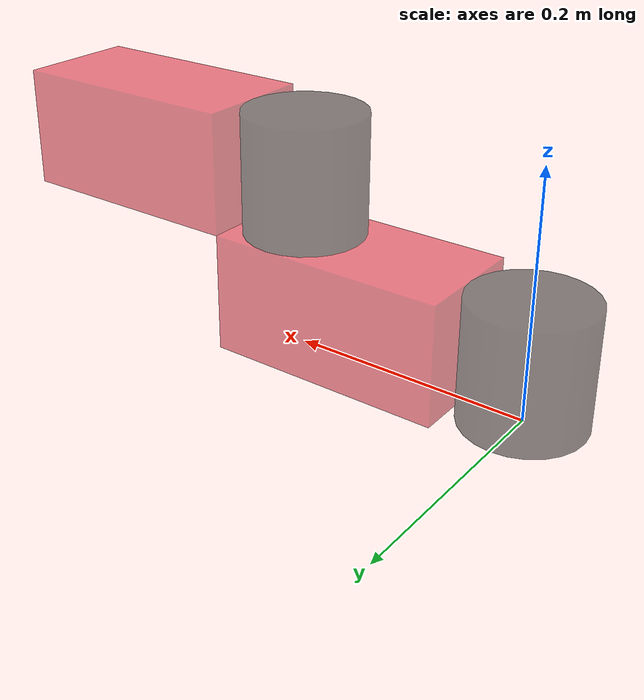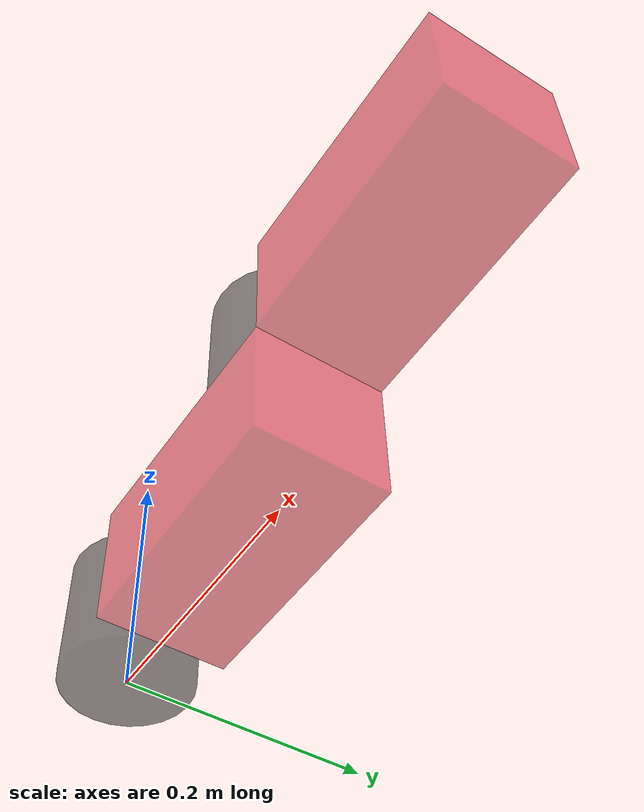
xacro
<?xml version="1.1"?>
<!-- tutorial for gazebo & URDF integration:
https://classic.gazebosim.org/tutorials?tut=ros_urdf -->
<robot xmlns:xacro="http://www.ros.org/wiki/xacro" name="board_arm">
    <xacro:arg name="link_length" default="0.2"/>
    <xacro:arg name="tile_size" default="0.25"/>
    <xacro:property name="link_mass" value="0.1"/>
    <xacro:property name="link_height" value="0.1"/>
    <xacro:property name="link_width" value="0.1"/>
    <xacro:property name="cylinder_radius" value="${link_width / 2}"/>
    <xacro:property name="link_length" value="$(arg link_length)"/>
    <xacro:property name="tile_size" value="$(arg tile_size)"/>

    <gazebo>
        <plugin name="gazebo_ros_control" filename="libgazebo_ros_control.so">
            <robotNamespace>/board_arm</robotNamespace>
        </plugin>
    </gazebo>
    <gazebo reference="link1">
        <material>Gazebo/Black</material>
    </gazebo>
    <gazebo reference="link2">
        <material>Gazebo/Red</material>
    </gazebo>
    <gazebo reference="link3">
        <material>Gazebo/Black</material>
    </gazebo>
    <gazebo reference="link4">
        <material>Gazebo/Red</material>
    </gazebo>

    <transmission name="tran1">
        <type>transmission_interface/SimpleTransmission</type>
        <joint name="joint1">
            <hardwareInterface>hardware_interface/EffortJointInterface</hardwareInterface>
        </joint>
        <actuator name="motor1">
            <hardwareInterface>hardware_interface/EffortJointInterface</hardwareInterface>
        </actuator>
    </transmission>
    <transmission name="tran2">
        <type>transmission_interface/SimpleTransmission</type>
        <joint name="joint2">
            <hardwareInterface>hardware_interface/EffortJointInterface</hardwareInterface>
        </joint>
        <actuator name="motor2">
            <hardwareInterface>hardware_interface/EffortJointInterface</hardwareInterface>
        </actuator>
    </transmission>

    <material name="Red">
        <color rgba="${220/255} ${0/255} ${25/255} 0.5"/>
    </material>
    <material name="Black">
        <color rgba="0.0 0.0 0.0 0.5"/>
    </material>

    <!-- world (link0) is the ground or base_link: unmoving -->
    <link name="world"/>
    <link name="link1">
        <inertial>
            <origin xyz="0 0 ${link_height / 2}"/>
            <mass value="${link_mass}"/>
            <!--
            These values are from the inertia matrices from:
            https://en.wikipedia.org/wiki/List_of_moments_of_inertia#List_of_3D_inertia_tensors
            -->
            <inertia
              ixx="${1/12 * link_mass * (3 * cylinder_radius ** 2 + link_height ** 2)}" ixy="0" ixz="0"
              iyy="${1/12 * link_mass * (3 * cylinder_radius ** 2 + link_height ** 2)}" iyz="0"
              izz="${1/2 * link_mass * cylinder_radius ** 2}"/>
         </inertial>

        <visual name="joint">
            <origin xyz="0 0 ${link_height / 2}"/>
            <geometry>
                <cylinder length="${link_height}" radius="${cylinder_radius}"/>
            </geometry>
            <material name="Black"/>
        </visual>

        <collision name="joint">
            <origin xyz="0 0 ${link_height / 2}"/>
            <geometry>
                <cylinder length="${link_height}" radius="${cylinder_radius}"/>
            </geometry>
        </collision>
    </link>

    <link name="link2">
        <inertial>
            <origin xyz="${link_length / 2 + cylinder_radius} 0 ${link_height / 2}"/>
            <mass value="${link_mass}"/>
            <inertia
              ixx="${1/12 * link_mass * (link_height**2 + link_width**2)}" ixy="0" ixz="0"
              iyy="${1/12 * link_mass * (link_length**2 + link_height**2)}" iyz="0"
              izz="${1/12 * link_mass * (link_length**2 + link_width**2)}"/>
        </inertial>

        <visual name="link">
            <!-- the "link_length / 2" is there since the frame is in the center of the box -->
            <origin xyz="${link_length / 2 + cylinder_radius} 0 ${link_height / 2}"/>
            <geometry>
                <box size="${link_length} ${link_width} ${link_height}"/>
            </geometry>
            <material name="Red"/>
        </visual>

        <collision name="link">
            <origin xyz="${link_length / 2 + cylinder_radius} 0 ${link_height / 2}"/>
            <geometry>
                <box size="${link_length} ${link_width} ${link_height}"/>
            </geometry>
        </collision>
    </link>

    <link name="link3">
        <inertial>
            <origin xyz="0 0 ${link_height / 2}"/>
            <mass value="${link_mass}"/>
            <!--
            These values are from the inertia matrices from:
            https://en.wikipedia.org/wiki/List_of_moments_of_inertia#List_of_3D_inertia_tensors
            -->
            <inertia
              ixx="${1/12 * link_mass * (3 * cylinder_radius ** 2 + link_height ** 2)}" ixy="0" ixz="0"
              iyy="${1/12 * link_mass * (3 * cylinder_radius ** 2 + link_height ** 2)}" iyz="0"
              izz="${1/2 * link_mass * cylinder_radius ** 2}"/>
        </inertial>

        <visual name="joint">
            <origin xyz="0 0 ${link_height / 2}"/>
            <geometry>
                <cylinder length="${link_height}" radius="${cylinder_radius}"/>
            </geometry>
            <material name="Black"/>
        </visual>

        <collision name="joint">
            <origin xyz="0 0 ${link_height / 2}"/>
            <geometry>
                <cylinder length="${link_height}" radius="${cylinder_radius}"/>
            </geometry>
        </collision>
    </link>

    <link name="link4">
        <inertial>
            <origin xyz="${link_length / 2 + cylinder_radius} 0 ${link_height / 2}"/>
            <mass value="${link_mass}"/>
            <inertia ixx="${1/12 * link_mass * (link_height**2 + link_width**2)}" ixy="0" ixz="0"
                     iyy="${1/12 * link_mass * (link_length**2 + link_height**2)}" iyz="0"
                     izz="${1/12 * link_mass * (link_length**2 + link_width**2)}"/>
        </inertial>

        <visual name="link">
            <origin xyz="${link_length / 2 + cylinder_radius} 0 ${link_height / 2}"/>
            <geometry>
                <box size="${link_length} ${link_width} ${link_height}"/>
            </geometry>
            <material name="Red"/>
        </visual>

        <collision name="link">
            <origin xyz="${link_length / 2 + cylinder_radius} 0 ${link_height / 2}"/>
            <geometry>
                <box size="${link_length} ${link_width} ${link_height}"/>
            </geometry>
        </collision>
    </link>

    <joint name="joint0" type="fixed">
        <parent link="world"/>
        <child link="link1"/>
    </joint>

    <joint name="joint1" type="continuous">
        <limit effort="30" velocity="1.0"/>
        <parent link="link1"/>
        <child link="link2"/>
        <origin xyz="0 0 0" rpy="0 0 0"/>
        <axis xyz="0 0 1"/>
    </joint>

    <joint name="joint2" type="continuous">
        <limit effort="30" velocity="1.0"/>
        <parent link="link2"/>
        <child link="link3"/>
        <origin xyz="${link_length} 0 ${link_height}" rpy="0 0 0"/>
        <axis xyz="0 0 1"/>
    </joint>

    <joint name="joint3" type="fixed">
        <parent link="link3"/>
        <child link="link4"/>
        <origin xyz="0 0 0" rpy="0 0 0"/>
    </joint>
</robot>
